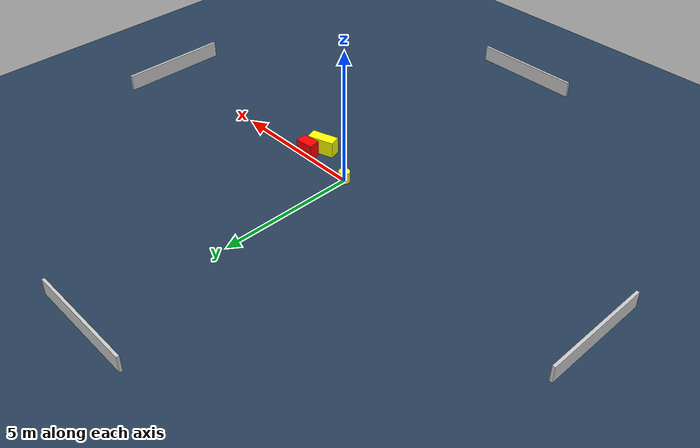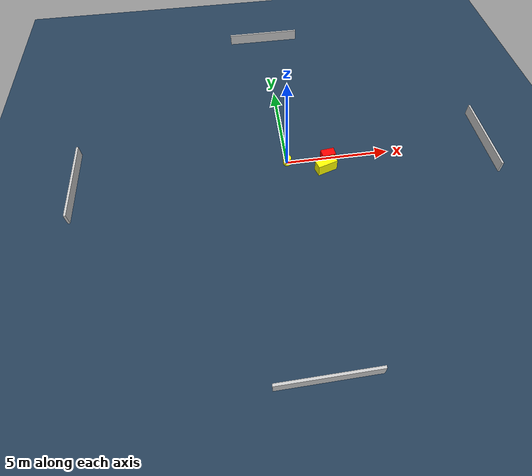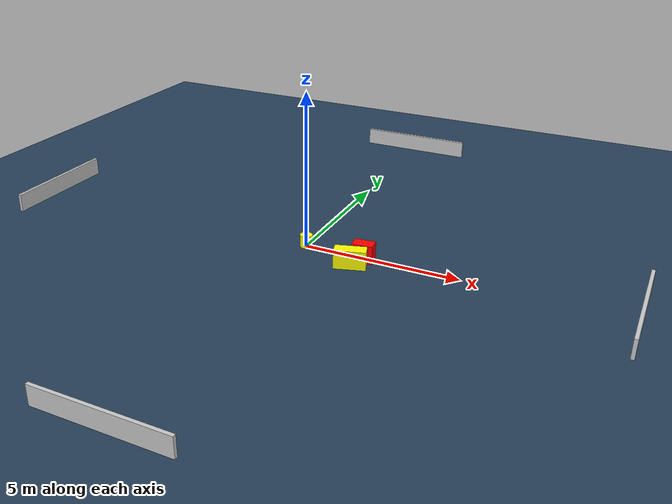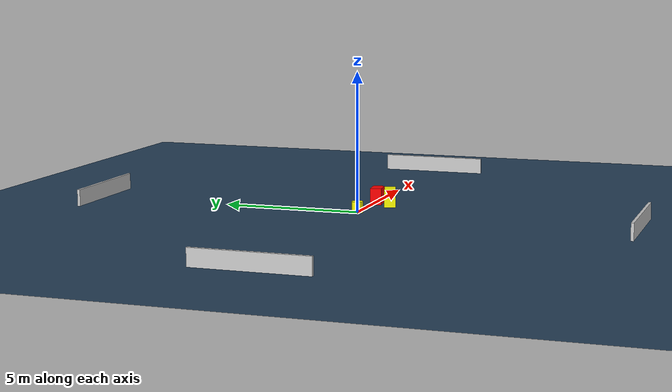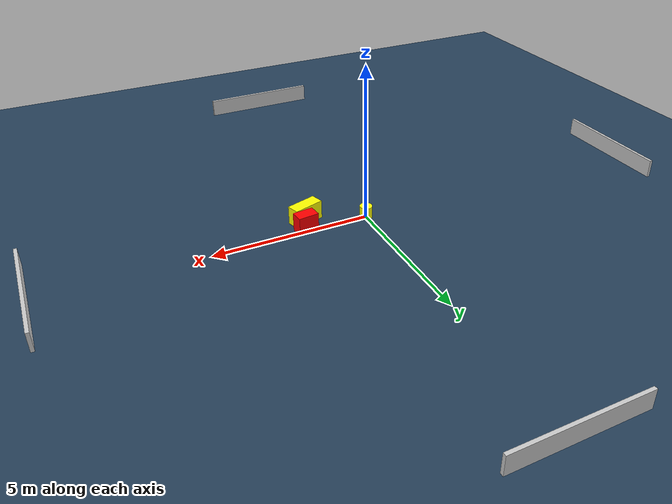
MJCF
<?xml version="1.0" ?>
<mujoco model="generated_environment">
  <option timestep="0.01" integrator="RK4" cone="elliptic"/>
  <default>
    <geom density="1"/>
  </default>
  <asset>
    <texture builtin="gradient" height="3072" name="skybox" rgb1="0.3 0.5 0.7" rgb2="0 0 0" type="skybox" width="512"/>
    <texture builtin="checker" height="300" name="groundplane" rgb1="0.2 0.3 0.4" rgb2="0.1 0.2 0.3" type="2d" width="300"/>
    <material name="groundplane" reflectance="0.2" texrepeat="5 5" texture="groundplane"/>
  </asset>
  <worldbody>
    <light dir="0 0 -1" directional="true" pos="0 0 1.5"/>
    <geom condim="3" friction="0.5 0.005 0.001" material="groundplane" name="floor" pos="0 0 0" size="0 0 0.05" type="plane"/>
    <body name="walls">
      <geom name="wall_1" condim="4" pos="-10.0 0.0 0.3" rgba="0.800000011920929 0.800000011920929 0.800000011920929 1.0" size="0.05 2.0 0.3" type="box"/>
      <geom name="wall_2" condim="4" pos="10.0 0.0 0.3" rgba="0.800000011920929 0.800000011920929 0.800000011920929 1.0" size="0.05 2.0 0.3" type="box"/>
      <geom name="wall_3" condim="4" pos="0.0 -10.0 0.3" rgba="0.800000011920929 0.800000011920929 0.800000011920929 1.0" size="2.0 0.05 0.3" type="box"/>
      <geom name="wall_4" condim="4" pos="0.0 10.0 0.3" rgba="0.800000011920929 0.800000011920929 0.800000011920929 1.0" size="2.0 0.05 0.3" type="box"/>
    </body>
    <body name="robot">
      <joint name="joint_x" type="slide" pos="0 0 0" axis="1 0 0"/>
      <joint name="joint_y" type="slide" pos="0 0 0" axis="0 1 0"/>
      <geom name="robot" type="cylinder" pos="0.0 0.0 0.2" size="0.2 0.2 0.0" mass="5.0" friction="1.0 0.005 0.0001" condim="4" rgba="1.0 1.0 0.0 1.0"/>
    </body>
    <body name="obstacle_1_movable">
      <geom name="obstacle_1_movable" condim="4" pos="1.78791258366007 -0.6524847650004675 0.3" euler="0 0 287.17353348888935" friction="0.0 0.005 0.001" rgba="1.0 1.0 0.0 1.0" size="0.20822658900943677 0.4917530348228974 0.3" type="box" mass="0.1"/>
      <joint type="free"/>
    </body>
    <body name="obstacle_2_static">
      <geom name="obstacle_2_static" condim="4" pos="1.9874146211516954 -0.10563914827473185 0.3" euler="0 0 276.20372571945364" friction="0.0 0.005 0.001" rgba="1.0 0.0 0.0 1.0" size="0.20567460575803967 0.32689063331990686 0.3" type="box"/>
    </body>
  </worldbody>
  <actuator>
    <motor name="actuator_x" joint="joint_x" gear="1" ctrlrange="-1 1"/>
    <motor name="actuator_y" joint="joint_y" gear="1" ctrlrange="-1 1"/>
  </actuator>
</mujoco>
